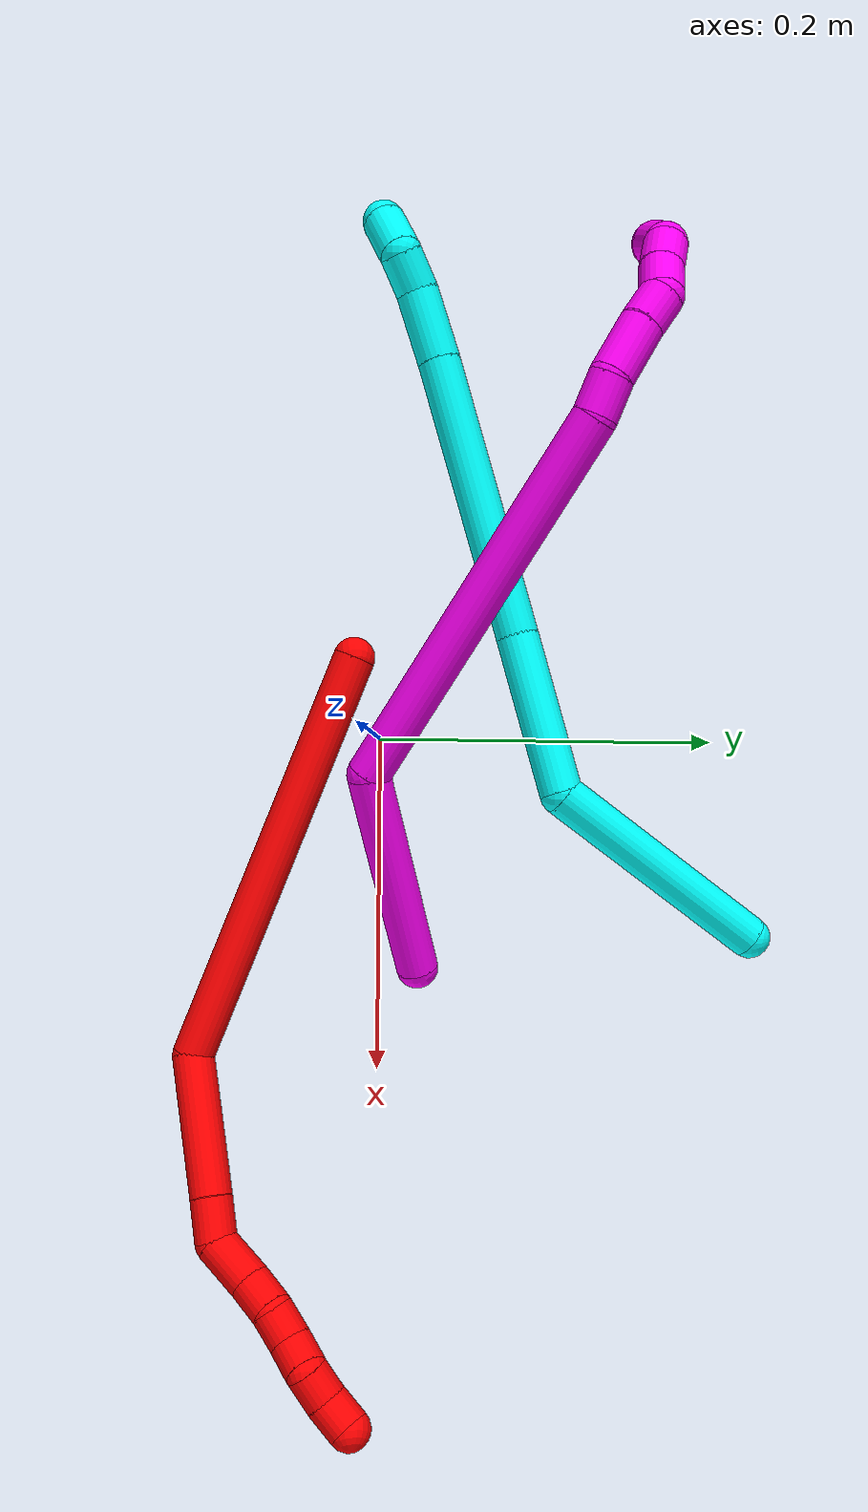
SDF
<sdf version="1.7">
 <world name="default">
  <model name="photoneo_s_sensor">
   <static>1</static>
   <pose>0 0 2 1.57079 1.57079 3.14159</pose>
   <link name="link">
    <inertial><mass>0.1</mass></inertial>
    <sensor name="sensor" type="depth">
     <update_rate>30</update_rate>
     <camera>
      <horizontal_fov>1.22</horizontal_fov>
      <image><width>1920</width><height>1200</height><format>B8G8R8</format></image>
      <clip><near>0.1</near><far>4</far></clip>
      <depth_camera><output>points</output></depth_camera>
     </camera>
     <plugin name="camera_plugin" filename="libgazebo_ros_depth_camera.so">
      <baseline>0.2</baseline>
      <alwaysOn>1</alwaysOn>
      <updateRate>0.0</updateRate>
      <cameraName>camera_ir</cameraName>
      <imageTopicName>/camera/color/image_raw</imageTopicName>
      <cameraInfoTopicName>/camera/color/camera_info</cameraInfoTopicName>
      <depthImageTopicName>/camera/depth/image_raw</depthImageTopicName>
      <depthImageCameraInfoTopicName>/camera/depth/camera_info</depthImageCameraInfoTopicName>
      <pointCloudTopicName>/camera/depth/points</pointCloudTopicName>
      <frameName>fr_optical</frameName>
      <pointCloudCutoff>0.1</pointCloudCutoff>
      <pointCloudCutoffMax>2.0</pointCloudCutoffMax>
      <distortionK1>0</distortionK1>
      <distortionK2>0</distortionK2>
      <distortionK3>0</distortionK3>
      <distortionT1>0</distortionT1>
      <distortionT2>0</distortionT2>
      <CxPrime>0</CxPrime>
      <Cx>0</Cx>
      <Cy>0</Cy>
      <focalLength>0</focalLength>
      <hackBaseline>0</hackBaseline>
     </plugin>
    </sensor>
   </link>
  </model>
  <model name="bin">
   <static>1</static>
   <link name="bottom">
    <collision name="collision-bottom">
     <pose>0 0 -0.01 0 -0 0</pose>
     <geometry><box><size>0.8 0.6 0.02</size></box></geometry>
     <surface>
      <friction><ode><mu>100</mu><mu2>100</mu2></ode></friction>
      <contact><collide_bitmask>65535</collide_bitmask></contact>
     </surface>
    </collision>
   </link>
   <link name="west_wall">
    <collision name="collision-west_wall">
     <pose>-0.41 0 0.1 0 -0 0</pose>
     <geometry><box><size>0.02 0.6 0.2</size></box></geometry>
     <surface>
      <friction><ode><mu>100</mu><mu2>100</mu2></ode></friction>
      <contact><collide_bitmask>65535</collide_bitmask></contact>
     </surface>
    </collision>
   </link>
   <link name="east_wall">
    <collision name="collision-east_wall">
     <pose>0.41 0 0.1 0 -0 0</pose>
     <geometry><box><size>0.02 0.6 0.2</size></box></geometry>
     <surface>
      <friction><ode><mu>100</mu><mu2>100</mu2></ode></friction>
      <contact><collide_bitmask>65535</collide_bitmask></contact>
     </surface>
    </collision>
   </link>
   <link name="south_wall">
    <collision name="collision-south_wall">
     <pose>0 -0.31 0.1 0 -0 0</pose>
     <geometry><box><size>0.8 0.02 0.2</size></box></geometry>
     <surface>
      <friction><ode><mu>100</mu><mu2>100</mu2></ode></friction>
      <contact><collide_bitmask>65535</collide_bitmask></contact>
     </surface>
    </collision>
   </link>
   <link name="north_wall">
    <collision name="collision-north_wall">
     <pose>0 0.31 0.1 0 -0 0</pose>
     <geometry><box><size>0.8 0.02 0.2</size></box></geometry>
     <surface>
      <friction><ode><mu>100</mu><mu2>100</mu2></ode></friction>
      <contact><collide_bitmask>65535</collide_bitmask></contact>
     </surface>
    </collision>
   </link>
  </model>
  <model name="2">
   <static>0</static>
   <link name="2">
    <collision name="collision-cylinder-e_1_1_4">
     <pose>0.087213 -0.027423 0.090259 0.294961 0.746202 0.116172</pose>
     <geometry><cylinder><radius>0.0125</radius><length>0.256943</length></cylinder></geometry>
     <surface>
      <friction><ode><mu>1.16</mu><mu2>1.16</mu2><slip1>0</slip1><slip2>0</slip2></ode></friction>
      <contact><ode><kp>1e+06</kp><kd>1</kd><max_vel>0</max_vel><min_depth>0.001</min_depth></ode></contact>
     </surface>
    </collision>
    <visual name="visual-cylinder-e_1_1_4">
     <pose>0.087213 -0.027423 0.090259 0.294961 0.746202 0.116172</pose>
     <geometry><cylinder><radius>0.0125</radius><length>0.256943</length></cylinder></geometry>
     <material><ambient>1 0 0 1</ambient></material>
    </visual>
    <collision name="collision-cylinder-e_2_4_5">
     <pose>0.185858 -0.047618 0.220543 -0.178647 0.273996 -0.024693</pose>
     <geometry><cylinder><radius>0.0125</radius><length>0.084495</length></cylinder></geometry>
     <surface>
      <friction><ode><mu>1.16</mu><mu2>1.16</mu2><slip1>0</slip1><slip2>0</slip2></ode></friction>
      <contact><ode><kp>1e+06</kp><kd>1</kd><max_vel>0</max_vel><min_depth>0.001</min_depth></ode></contact>
     </surface>
    </collision>
    <visual name="visual-cylinder-e_2_4_5">
     <pose>0.185858 -0.047618 0.220543 -0.178647 0.273996 -0.024693</pose>
     <geometry><cylinder><radius>0.0125</radius><length>0.084495</length></cylinder></geometry>
     <material><ambient>1 0 0 1</ambient></material>
    </visual>
    <collision name="collision-cylinder-e_3_5_6">
     <pose>0.20141 -0.038132 0.272795 -0.182681 0.31995 -0.029556</pose>
     <geometry><cylinder><radius>0.0125</radius><length>0.0262</length></cylinder></geometry>
     <surface>
      <friction><ode><mu>1.16</mu><mu2>1.16</mu2><slip1>0</slip1><slip2>0</slip2></ode></friction>
      <contact><ode><kp>1e+06</kp><kd>1</kd><max_vel>0</max_vel><min_depth>0.001</min_depth></ode></contact>
     </surface>
    </collision>
    <visual name="visual-cylinder-e_3_5_6">
     <pose>0.20141 -0.038132 0.272795 -0.182681 0.31995 -0.029556</pose>
     <geometry><cylinder><radius>0.0125</radius><length>0.0262</length></cylinder></geometry>
     <material><ambient>1 0 0 1</ambient></material>
    </visual>
    <collision name="collision-cylinder-e_4_6_7">
     <pose>0.20346 -0.026987 0.297324 -0.625587 -0.13559 0.043912</pose>
     <geometry><cylinder><radius>0.0125</radius><length>0.03063</length></cylinder></geometry>
     <surface>
      <friction><ode><mu>1.16</mu><mu2>1.16</mu2><slip1>0</slip1><slip2>0</slip2></ode></friction>
      <contact><ode><kp>1e+06</kp><kd>1</kd><max_vel>0</max_vel><min_depth>0.001</min_depth></ode></contact>
     </surface>
    </collision>
    <visual name="visual-cylinder-e_4_6_7">
     <pose>0.20346 -0.026987 0.297324 -0.625587 -0.13559 0.043912</pose>
     <geometry><cylinder><radius>0.0125</radius><length>0.03063</length></cylinder></geometry>
     <material><ambient>1 0 0 1</ambient></material>
    </visual>
    <collision name="collision-cylinder-e_5_7_8">
     <pose>0.19883 -0.013101 0.318593 -0.508675 -0.244258 0.063795</pose>
     <geometry><cylinder><radius>0.0125</radius><length>0.021166</length></cylinder></geometry>
     <surface>
      <friction><ode><mu>1.16</mu><mu2>1.16</mu2><slip1>0</slip1><slip2>0</slip2></ode></friction>
      <contact><ode><kp>1e+06</kp><kd>1</kd><max_vel>0</max_vel><min_depth>0.001</min_depth></ode></contact>
     </surface>
    </collision>
    <visual name="visual-cylinder-e_5_7_8">
     <pose>0.19883 -0.013101 0.318593 -0.508675 -0.244258 0.063795</pose>
     <geometry><cylinder><radius>0.0125</radius><length>0.021166</length></cylinder></geometry>
     <material><ambient>1 0 0 1</ambient></material>
    </visual>
    <collision name="collision-cylinder-e_6_8_9">
     <pose>0.197306 -0.002762 0.336208 -0.553093 0.101506 -0.028832</pose>
     <geometry><cylinder><radius>0.0125</radius><length>0.020427</length></cylinder></geometry>
     <surface>
      <friction><ode><mu>1.16</mu><mu2>1.16</mu2><slip1>0</slip1><slip2>0</slip2></ode></friction>
      <contact><ode><kp>1e+06</kp><kd>1</kd><max_vel>0</max_vel><min_depth>0.001</min_depth></ode></contact>
     </surface>
    </collision>
    <visual name="visual-cylinder-e_6_8_9">
     <pose>0.197306 -0.002762 0.336208 -0.553093 0.101506 -0.028832</pose>
     <geometry><cylinder><radius>0.0125</radius><length>0.020427</length></cylinder></geometry>
     <material><ambient>1 0 0 1</ambient></material>
    </visual>
    <collision name="collision-cylinder-e_7_9_10">
     <pose>0.195664 0.005654 0.35399 -0.324962 -0.27085 0.044665</pose>
     <geometry><cylinder><radius>0.0125</radius><length>0.02001</length></cylinder></geometry>
     <surface>
      <friction><ode><mu>1.16</mu><mu2>1.16</mu2><slip1>0</slip1><slip2>0</slip2></ode></friction>
      <contact><ode><kp>1e+06</kp><kd>1</kd><max_vel>0</max_vel><min_depth>0.001</min_depth></ode></contact>
     </surface>
    </collision>
    <visual name="visual-cylinder-e_7_9_10">
     <pose>0.195664 0.005654 0.35399 -0.324962 -0.27085 0.044665</pose>
     <geometry><cylinder><radius>0.0125</radius><length>0.02001</length></cylinder></geometry>
     <material><ambient>1 0 0 1</ambient></material>
    </visual>
    <collision name="collision-cylinder-e_8_10_11">
     <pose>0.195365 0.014873 0.370696 -0.681514 0.239253 -0.085192</pose>
     <geometry><cylinder><radius>0.0125</radius><length>0.020069</length></cylinder></geometry>
     <surface>
      <friction><ode><mu>1.16</mu><mu2>1.16</mu2><slip1>0</slip1><slip2>0</slip2></ode></friction>
      <contact><ode><kp>1e+06</kp><kd>1</kd><max_vel>0</max_vel><min_depth>0.001</min_depth></ode></contact>
     </surface>
    </collision>
    <visual name="visual-cylinder-e_8_10_11">
     <pose>0.195365 0.014873 0.370696 -0.681514 0.239253 -0.085192</pose>
     <geometry><cylinder><radius>0.0125</radius><length>0.020069</length></cylinder></geometry>
     <material><ambient>1 0 0 1</ambient></material>
    </visual>
    <collision name="collision-cylinder-e_9_11_2">
     <pose>0.196678 0.0267 0.386462 -0.606543 -0.106381 0.033318</pose>
     <geometry><cylinder><radius>0.0125</radius><length>0.02006</length></cylinder></geometry>
     <surface>
      <friction><ode><mu>1.16</mu><mu2>1.16</mu2><slip1>0</slip1><slip2>0</slip2></ode></friction>
      <contact><ode><kp>1e+06</kp><kd>1</kd><max_vel>0</max_vel><min_depth>0.001</min_depth></ode></contact>
     </surface>
    </collision>
    <visual name="visual-cylinder-e_9_11_2">
     <pose>0.196678 0.0267 0.386462 -0.606543 -0.106381 0.033318</pose>
     <geometry><cylinder><radius>0.0125</radius><length>0.02006</length></cylinder></geometry>
     <material><ambient>1 0 0 1</ambient></material>
    </visual>
    <collision name="collision-sphere-2">
     <pose>0.195613 0.032385 0.394656 0 -0 0</pose>
     <geometry><sphere><radius>0.0125</radius></sphere></geometry>
     <surface>
      <friction><ode><mu>1.16</mu><mu2>1.16</mu2><slip1>0</slip1><slip2>0</slip2></ode></friction>
      <contact><ode><kp>1e+06</kp><kd>1</kd><max_vel>0</max_vel><min_depth>0.001</min_depth></ode></contact>
     </surface>
    </collision>
    <visual name="visual-sphere-2">
     <pose>0.195613 0.032385 0.394656 0 -0 0</pose>
     <geometry><sphere><radius>0.0125</radius></sphere></geometry>
     <material><ambient>1 0 0 1</ambient></material>
    </visual>
    <collision name="collision-sphere-11">
     <pose>0.197743 0.021015 0.378267 0 -0 0</pose>
     <geometry><sphere><radius>0.0125</radius></sphere></geometry>
     <surface>
      <friction><ode><mu>1.16</mu><mu2>1.16</mu2><slip1>0</slip1><slip2>0</slip2></ode></friction>
      <contact><ode><kp>1e+06</kp><kd>1</kd><max_vel>0</max_vel><min_depth>0.001</min_depth></ode></contact>
     </surface>
    </collision>
    <visual name="visual-sphere-11">
     <pose>0.197743 0.021015 0.378267 0 -0 0</pose>
     <geometry><sphere><radius>0.0125</radius></sphere></geometry>
     <material><ambient>1 0 0 1</ambient></material>
    </visual>
    <collision name="collision-sphere-10">
     <pose>0.192987 0.008732 0.363125 0 -0 0</pose>
     <geometry><sphere><radius>0.0125</radius></sphere></geometry>
     <surface>
      <friction><ode><mu>1.16</mu><mu2>1.16</mu2><slip1>0</slip1><slip2>0</slip2></ode></friction>
      <contact><ode><kp>1e+06</kp><kd>1</kd><max_vel>0</max_vel><min_depth>0.001</min_depth></ode></contact>
     </surface>
    </collision>
    <visual name="visual-sphere-10">
     <pose>0.192987 0.008732 0.363125 0 -0 0</pose>
     <geometry><sphere><radius>0.0125</radius></sphere></geometry>
     <material><ambient>1 0 0 1</ambient></material>
    </visual>
    <collision name="collision-sphere-9">
     <pose>0.198341 0.002576 0.344854 0 -0 0</pose>
     <geometry><sphere><radius>0.0125</radius></sphere></geometry>
     <surface>
      <friction><ode><mu>1.16</mu><mu2>1.16</mu2><slip1>0</slip1><slip2>0</slip2></ode></friction>
      <contact><ode><kp>1e+06</kp><kd>1</kd><max_vel>0</max_vel><min_depth>0.001</min_depth></ode></contact>
     </surface>
    </collision>
    <visual name="visual-sphere-9">
     <pose>0.198341 0.002576 0.344854 0 -0 0</pose>
     <geometry><sphere><radius>0.0125</radius></sphere></geometry>
     <material><ambient>1 0 0 1</ambient></material>
    </visual>
    <collision name="collision-sphere-4">
     <pose>0.174427 -0.054846 0.180518 0 -0 0</pose>
     <geometry><sphere><radius>0.0125</radius></sphere></geometry>
     <surface>
      <friction><ode><mu>1.16</mu><mu2>1.16</mu2><slip1>0</slip1><slip2>0</slip2></ode></friction>
      <contact><ode><kp>1e+06</kp><kd>1</kd><max_vel>0</max_vel><min_depth>0.001</min_depth></ode></contact>
     </surface>
    </collision>
    <visual name="visual-sphere-4">
     <pose>0.174427 -0.054846 0.180518 0 -0 0</pose>
     <geometry><sphere><radius>0.0125</radius></sphere></geometry>
     <material><ambient>1 0 0 1</ambient></material>
    </visual>
    <collision name="collision-sphere-1">
     <geometry><sphere><radius>0.0125</radius></sphere></geometry>
     <surface>
      <friction><ode><mu>1.16</mu><mu2>1.16</mu2><slip1>0</slip1><slip2>0</slip2></ode></friction>
      <contact><ode><kp>1e+06</kp><kd>1</kd><max_vel>0</max_vel><min_depth>0.001</min_depth></ode></contact>
     </surface>
    </collision>
    <visual name="visual-sphere-1">
     <geometry><sphere><radius>0.0125</radius></sphere></geometry>
     <material><ambient>1 0 0 1</ambient></material>
    </visual>
    <collision name="collision-sphere-8">
     <pose>0.196271 -0.0081 0.327562 0 -0 0</pose>
     <geometry><sphere><radius>0.0125</radius></sphere></geometry>
     <surface>
      <friction><ode><mu>1.16</mu><mu2>1.16</mu2><slip1>0</slip1><slip2>0</slip2></ode></friction>
      <contact><ode><kp>1e+06</kp><kd>1</kd><max_vel>0</max_vel><min_depth>0.001</min_depth></ode></contact>
     </surface>
    </collision>
    <visual name="visual-sphere-8">
     <pose>0.196271 -0.0081 0.327562 0 -0 0</pose>
     <geometry><sphere><radius>0.0125</radius></sphere></geometry>
     <material><ambient>1 0 0 1</ambient></material>
    </visual>
    <collision name="collision-sphere-5">
     <pose>0.197289 -0.040391 0.260567 0 -0 0</pose>
     <geometry><sphere><radius>0.0125</radius></sphere></geometry>
     <surface>
      <friction><ode><mu>1.16</mu><mu2>1.16</mu2><slip1>0</slip1><slip2>0</slip2></ode></friction>
      <contact><ode><kp>1e+06</kp><kd>1</kd><max_vel>0</max_vel><min_depth>0.001</min_depth></ode></contact>
     </surface>
    </collision>
    <visual name="visual-sphere-5">
     <pose>0.197289 -0.040391 0.260567 0 -0 0</pose>
     <geometry><sphere><radius>0.0125</radius></sphere></geometry>
     <material><ambient>1 0 0 1</ambient></material>
    </visual>
    <collision name="collision-sphere-6">
     <pose>0.20553 -0.035873 0.285023 0 -0 0</pose>
     <geometry><sphere><radius>0.0125</radius></sphere></geometry>
     <surface>
      <friction><ode><mu>1.16</mu><mu2>1.16</mu2><slip1>0</slip1><slip2>0</slip2></ode></friction>
      <contact><ode><kp>1e+06</kp><kd>1</kd><max_vel>0</max_vel><min_depth>0.001</min_depth></ode></contact>
     </surface>
    </collision>
    <visual name="visual-sphere-6">
     <pose>0.20553 -0.035873 0.285023 0 -0 0</pose>
     <geometry><sphere><radius>0.0125</radius></sphere></geometry>
     <material><ambient>1 0 0 1</ambient></material>
    </visual>
    <collision name="collision-sphere-7">
     <pose>0.201389 -0.018102 0.309625 0 -0 0</pose>
     <geometry><sphere><radius>0.0125</radius></sphere></geometry>
     <surface>
      <friction><ode><mu>1.16</mu><mu2>1.16</mu2><slip1>0</slip1><slip2>0</slip2></ode></friction>
      <contact><ode><kp>1e+06</kp><kd>1</kd><max_vel>0</max_vel><min_depth>0.001</min_depth></ode></contact>
     </surface>
    </collision>
    <visual name="visual-sphere-7">
     <pose>0.201389 -0.018102 0.309625 0 -0 0</pose>
     <geometry><sphere><radius>0.0125</radius></sphere></geometry>
     <material><ambient>1 0 0 1</ambient></material>
    </visual>
    <inertial>
     <pose>0.139284 -0.024564 0.187934 0 -0 0</pose>
     <mass>0.5</mass>
     <inertia>
      <ixx>0.001238</ixx>
      <ixy>0</ixy>
      <ixz>0</ixz>
      <iyy>0.001573</iyy>
      <iyz>0</iyz>
      <izz>-0.000661</izz>
     </inertia>
    </inertial>
   </link>
   <pose>-0.048083 -0.015275 0.011707 -0.629283 0.796995 -0.618082</pose>
  </model>
  <model name="3">
   <static>0</static>
   <link name="3">
    <collision name="collision-cylinder-e_1_1_4">
     <pose>-0.036401 -0.036555 -0.051548 2.52475 -0.522607 -1.3966</pose>
     <geometry><cylinder><radius>0.0125</radius><length>0.145856</length></cylinder></geometry>
     <surface>
      <friction><ode><mu>1.16</mu><mu2>1.16</mu2><slip1>0</slip1><slip2>0</slip2></ode></friction>
      <contact><ode><kp>1e+06</kp><kd>1</kd><max_vel>0</max_vel><min_depth>0.001</min_depth></ode></contact>
     </surface>
    </collision>
    <visual name="visual-cylinder-e_1_1_4">
     <pose>-0.036401 -0.036555 -0.051548 2.52475 -0.522607 -1.3966</pose>
     <geometry><cylinder><radius>0.0125</radius><length>0.145856</length></cylinder></geometry>
     <material><ambient>0.003922 1 0.996078 1</ambient></material>
    </visual>
    <collision name="collision-cylinder-e_2_4_5">
     <pose>-0.117354 -0.074444 -0.120733 3.0661 -1.19284 -3.03046</pose>
     <geometry><cylinder><radius>0.0125</radius><length>0.095869</length></cylinder></geometry>
     <surface>
      <friction><ode><mu>1.16</mu><mu2>1.16</mu2><slip1>0</slip1><slip2>0</slip2></ode></friction>
      <contact><ode><kp>1e+06</kp><kd>1</kd><max_vel>0</max_vel><min_depth>0.001</min_depth></ode></contact>
     </surface>
    </collision>
    <visual name="visual-cylinder-e_2_4_5">
     <pose>-0.117354 -0.074444 -0.120733 3.0661 -1.19284 -3.03046</pose>
     <geometry><cylinder><radius>0.0125</radius><length>0.095869</length></cylinder></geometry>
     <material><ambient>0.003922 1 0.996078 1</ambient></material>
    </visual>
    <collision name="collision-cylinder-e_3_5_6">
     <pose>-0.239205 -0.087384 -0.166798 2.75396 -1.1927 -2.57863</pose>
     <geometry><cylinder><radius>0.0125</radius><length>0.16635</length></cylinder></geometry>
     <surface>
      <friction><ode><mu>1.16</mu><mu2>1.16</mu2><slip1>0</slip1><slip2>0</slip2></ode></friction>
      <contact><ode><kp>1e+06</kp><kd>1</kd><max_vel>0</max_vel><min_depth>0.001</min_depth></ode></contact>
     </surface>
    </collision>
    <visual name="visual-cylinder-e_3_5_6">
     <pose>-0.239205 -0.087384 -0.166798 2.75396 -1.1927 -2.57863</pose>
     <geometry><cylinder><radius>0.0125</radius><length>0.16635</length></cylinder></geometry>
     <material><ambient>0.003922 1 0.996078 1</ambient></material>
    </visual>
    <collision name="collision-cylinder-e_4_6_7">
     <pose>-0.335735 -0.102725 -0.202728 2.67978 -1.15968 -2.45231</pose>
     <geometry><cylinder><radius>0.0125</radius><length>0.041954</length></cylinder></geometry>
     <surface>
      <friction><ode><mu>1.16</mu><mu2>1.16</mu2><slip1>0</slip1><slip2>0</slip2></ode></friction>
      <contact><ode><kp>1e+06</kp><kd>1</kd><max_vel>0</max_vel><min_depth>0.001</min_depth></ode></contact>
     </surface>
    </collision>
    <visual name="visual-cylinder-e_4_6_7">
     <pose>-0.335735 -0.102725 -0.202728 2.67978 -1.15968 -2.45231</pose>
     <geometry><cylinder><radius>0.0125</radius><length>0.041954</length></cylinder></geometry>
     <material><ambient>0.003922 1 0.996078 1</ambient></material>
    </visual>
    <collision name="collision-cylinder-e_5_7_8">
     <pose>-0.364437 -0.111561 -0.214371 2.25235 -0.964569 -1.66489</pose>
     <geometry><cylinder><radius>0.0125</radius><length>0.023055</length></cylinder></geometry>
     <surface>
      <friction><ode><mu>1.16</mu><mu2>1.16</mu2><slip1>0</slip1><slip2>0</slip2></ode></friction>
      <contact><ode><kp>1e+06</kp><kd>1</kd><max_vel>0</max_vel><min_depth>0.001</min_depth></ode></contact>
     </surface>
    </collision>
    <visual name="visual-cylinder-e_5_7_8">
     <pose>-0.364437 -0.111561 -0.214371 2.25235 -0.964569 -1.66489</pose>
     <geometry><cylinder><radius>0.0125</radius><length>0.023055</length></cylinder></geometry>
     <material><ambient>0.003922 1 0.996078 1</ambient></material>
    </visual>
    <collision name="collision-cylinder-e_6_8_2">
     <pose>-0.384521 -0.113597 -0.226201 -2.76236 -0.908147 2.39231</pose>
     <geometry><cylinder><radius>0.0125</radius><length>0.026917</length></cylinder></geometry>
     <surface>
      <friction><ode><mu>1.16</mu><mu2>1.16</mu2><slip1>0</slip1><slip2>0</slip2></ode></friction>
      <contact><ode><kp>1e+06</kp><kd>1</kd><max_vel>0</max_vel><min_depth>0.001</min_depth></ode></contact>
     </surface>
    </collision>
    <visual name="visual-cylinder-e_6_8_2">
     <pose>-0.384521 -0.113597 -0.226201 -2.76236 -0.908147 2.39231</pose>
     <geometry><cylinder><radius>0.0125</radius><length>0.026917</length></cylinder></geometry>
     <material><ambient>0.003922 1 0.996078 1</ambient></material>
    </visual>
    <collision name="collision-sphere-2">
     <pose>-0.395131 -0.110531 -0.233892 0 -0 0</pose>
     <geometry><sphere><radius>0.0125</radius></sphere></geometry>
     <surface>
      <friction><ode><mu>1.16</mu><mu2>1.16</mu2><slip1>0</slip1><slip2>0</slip2></ode></friction>
      <contact><ode><kp>1e+06</kp><kd>1</kd><max_vel>0</max_vel><min_depth>0.001</min_depth></ode></contact>
     </surface>
    </collision>
    <visual name="visual-sphere-2">
     <pose>-0.395131 -0.110531 -0.233892 0 -0 0</pose>
     <geometry><sphere><radius>0.0125</radius></sphere></geometry>
     <material><ambient>0.003922 1 0.996078 1</ambient></material>
    </visual>
    <collision name="collision-sphere-4">
     <pose>-0.072802 -0.07311 -0.103095 0 -0 0</pose>
     <geometry><sphere><radius>0.0125</radius></sphere></geometry>
     <surface>
      <friction><ode><mu>1.16</mu><mu2>1.16</mu2><slip1>0</slip1><slip2>0</slip2></ode></friction>
      <contact><ode><kp>1e+06</kp><kd>1</kd><max_vel>0</max_vel><min_depth>0.001</min_depth></ode></contact>
     </surface>
    </collision>
    <visual name="visual-sphere-4">
     <pose>-0.072802 -0.07311 -0.103095 0 -0 0</pose>
     <geometry><sphere><radius>0.0125</radius></sphere></geometry>
     <material><ambient>0.003922 1 0.996078 1</ambient></material>
    </visual>
    <collision name="collision-sphere-1">
     <geometry><sphere><radius>0.0125</radius></sphere></geometry>
     <surface>
      <friction><ode><mu>1.16</mu><mu2>1.16</mu2><slip1>0</slip1><slip2>0</slip2></ode></friction>
      <contact><ode><kp>1e+06</kp><kd>1</kd><max_vel>0</max_vel><min_depth>0.001</min_depth></ode></contact>
     </surface>
    </collision>
    <visual name="visual-sphere-1">
     <geometry><sphere><radius>0.0125</radius></sphere></geometry>
     <material><ambient>0.003922 1 0.996078 1</ambient></material>
    </visual>
    <collision name="collision-sphere-8">
     <pose>-0.373911 -0.116662 -0.218509 0 -0 0</pose>
     <geometry><sphere><radius>0.0125</radius></sphere></geometry>
     <surface>
      <friction><ode><mu>1.16</mu><mu2>1.16</mu2><slip1>0</slip1><slip2>0</slip2></ode></friction>
      <contact><ode><kp>1e+06</kp><kd>1</kd><max_vel>0</max_vel><min_depth>0.001</min_depth></ode></contact>
     </surface>
    </collision>
    <visual name="visual-sphere-8">
     <pose>-0.373911 -0.116662 -0.218509 0 -0 0</pose>
     <geometry><sphere><radius>0.0125</radius></sphere></geometry>
     <material><ambient>0.003922 1 0.996078 1</ambient></material>
    </visual>
    <collision name="collision-sphere-5">
     <pose>-0.161905 -0.075778 -0.138372 0 -0 0</pose>
     <geometry><sphere><radius>0.0125</radius></sphere></geometry>
     <surface>
      <friction><ode><mu>1.16</mu><mu2>1.16</mu2><slip1>0</slip1><slip2>0</slip2></ode></friction>
      <contact><ode><kp>1e+06</kp><kd>1</kd><max_vel>0</max_vel><min_depth>0.001</min_depth></ode></contact>
     </surface>
    </collision>
    <visual name="visual-sphere-5">
     <pose>-0.161905 -0.075778 -0.138372 0 -0 0</pose>
     <geometry><sphere><radius>0.0125</radius></sphere></geometry>
     <material><ambient>0.003922 1 0.996078 1</ambient></material>
    </visual>
    <collision name="collision-sphere-6">
     <pose>-0.316506 -0.09899 -0.195223 0 -0 0</pose>
     <geometry><sphere><radius>0.0125</radius></sphere></geometry>
     <surface>
      <friction><ode><mu>1.16</mu><mu2>1.16</mu2><slip1>0</slip1><slip2>0</slip2></ode></friction>
      <contact><ode><kp>1e+06</kp><kd>1</kd><max_vel>0</max_vel><min_depth>0.001</min_depth></ode></contact>
     </surface>
    </collision>
    <visual name="visual-sphere-6">
     <pose>-0.316506 -0.09899 -0.195223 0 -0 0</pose>
     <geometry><sphere><radius>0.0125</radius></sphere></geometry>
     <material><ambient>0.003922 1 0.996078 1</ambient></material>
    </visual>
    <collision name="collision-sphere-7">
     <pose>-0.354964 -0.10646 -0.210233 0 -0 0</pose>
     <geometry><sphere><radius>0.0125</radius></sphere></geometry>
     <surface>
      <friction><ode><mu>1.16</mu><mu2>1.16</mu2><slip1>0</slip1><slip2>0</slip2></ode></friction>
      <contact><ode><kp>1e+06</kp><kd>1</kd><max_vel>0</max_vel><min_depth>0.001</min_depth></ode></contact>
     </surface>
    </collision>
    <visual name="visual-sphere-7">
     <pose>-0.354964 -0.10646 -0.210233 0 -0 0</pose>
     <geometry><sphere><radius>0.0125</radius></sphere></geometry>
     <material><ambient>0.003922 1 0.996078 1</ambient></material>
    </visual>
    <inertial>
     <pose>-0.178378 -0.073889 -0.132752 0 -0 0</pose>
     <mass>0.5</mass>
     <inertia>
      <ixx>-0.000452</ixx>
      <ixy>0</ixy>
      <ixz>0</ixz>
      <iyy>0.000188</iyy>
      <iyz>0</iyz>
      <izz>0.000749</izz>
     </inertia>
    </inertial>
   </link>
   <pose>0.116493 0.222463 0.016316 -1.22686 -0.011565 -0.089395</pose>
  </model>
  <model name="10">
   <static>0</static>
   <link name="10">
    <collision name="collision-cylinder-e_1_1_4">
     <pose>-0.053276 -0.035456 0.008596 1.33295 -0.970349 -0.786168</pose>
     <geometry><cylinder><radius>0.0125</radius><length>0.129142</length></cylinder></geometry>
     <surface>
      <friction><ode><mu>1.16</mu><mu2>1.16</mu2><slip1>0</slip1><slip2>0</slip2></ode></friction>
      <contact><ode><kp>1e+06</kp><kd>1</kd><max_vel>0</max_vel><min_depth>0.001</min_depth></ode></contact>
     </surface>
    </collision>
    <visual name="visual-cylinder-e_1_1_4">
     <pose>-0.053276 -0.035456 0.008596 1.33295 -0.970349 -0.786168</pose>
     <geometry><cylinder><radius>0.0125</radius><length>0.129142</length></cylinder></geometry>
     <material><ambient>1 0 0.964706 1</ambient></material>
    </visual>
    <collision name="collision-cylinder-e_2_4_5">
     <pose>-0.170433 -0.105036 0.108064 0.359219 -0.582047 -0.108661</pose>
     <geometry><cylinder><radius>0.0125</radius><length>0.232404</length></cylinder></geometry>
     <surface>
      <friction><ode><mu>1.16</mu><mu2>1.16</mu2><slip1>0</slip1><slip2>0</slip2></ode></friction>
      <contact><ode><kp>1e+06</kp><kd>1</kd><max_vel>0</max_vel><min_depth>0.001</min_depth></ode></contact>
     </surface>
    </collision>
    <visual name="visual-cylinder-e_2_4_5">
     <pose>-0.170433 -0.105036 0.108064 0.359219 -0.582047 -0.108661</pose>
     <geometry><cylinder><radius>0.0125</radius><length>0.232404</length></cylinder></geometry>
     <material><ambient>1 0 0.964706 1</ambient></material>
    </visual>
    <collision name="collision-cylinder-e_3_5_6">
     <pose>-0.242603 -0.140839 0.206461 0.219575 -0.821659 -0.095963</pose>
     <geometry><cylinder><radius>0.0125</radius><length>0.022641</length></cylinder></geometry>
     <surface>
      <friction><ode><mu>1.16</mu><mu2>1.16</mu2><slip1>0</slip1><slip2>0</slip2></ode></friction>
      <contact><ode><kp>1e+06</kp><kd>1</kd><max_vel>0</max_vel><min_depth>0.001</min_depth></ode></contact>
     </surface>
    </collision>
    <visual name="visual-cylinder-e_3_5_6">
     <pose>-0.242603 -0.140839 0.206461 0.219575 -0.821659 -0.095963</pose>
     <geometry><cylinder><radius>0.0125</radius><length>0.022641</length></cylinder></geometry>
     <material><ambient>1 0 0.964706 1</ambient></material>
    </visual>
    <collision name="collision-cylinder-e_4_6_7">
     <pose>-0.262318 -0.140547 0.22609 -0.161445 -0.74995 0.063661</pose>
     <geometry><cylinder><radius>0.0125</radius><length>0.033522</length></cylinder></geometry>
     <surface>
      <friction><ode><mu>1.16</mu><mu2>1.16</mu2><slip1>0</slip1><slip2>0</slip2></ode></friction>
      <contact><ode><kp>1e+06</kp><kd>1</kd><max_vel>0</max_vel><min_depth>0.001</min_depth></ode></contact>
     </surface>
    </collision>
    <visual name="visual-cylinder-e_4_6_7">
     <pose>-0.262318 -0.140547 0.22609 -0.161445 -0.74995 0.063661</pose>
     <geometry><cylinder><radius>0.0125</radius><length>0.033522</length></cylinder></geometry>
     <material><ambient>1 0 0.964706 1</ambient></material>
    </visual>
    <collision name="collision-cylinder-e_5_7_8">
     <pose>-0.280262 -0.136765 0.245992 -0.228113 -0.683579 0.08146</pose>
     <geometry><cylinder><radius>0.0125</radius><length>0.020648</length></cylinder></geometry>
     <surface>
      <friction><ode><mu>1.16</mu><mu2>1.16</mu2><slip1>0</slip1><slip2>0</slip2></ode></friction>
      <contact><ode><kp>1e+06</kp><kd>1</kd><max_vel>0</max_vel><min_depth>0.001</min_depth></ode></contact>
     </surface>
    </collision>
    <visual name="visual-cylinder-e_5_7_8">
     <pose>-0.280262 -0.136765 0.245992 -0.228113 -0.683579 0.08146</pose>
     <geometry><cylinder><radius>0.0125</radius><length>0.020648</length></cylinder></geometry>
     <material><ambient>1 0 0.964706 1</ambient></material>
    </visual>
    <collision name="collision-cylinder-e_6_8_9">
     <pose>-0.295939 -0.130417 0.256764 -0.99058 -1.0358 0.597183</pose>
     <geometry><cylinder><radius>0.0125</radius><length>0.021287</length></cylinder></geometry>
     <surface>
      <friction><ode><mu>1.16</mu><mu2>1.16</mu2><slip1>0</slip1><slip2>0</slip2></ode></friction>
      <contact><ode><kp>1e+06</kp><kd>1</kd><max_vel>0</max_vel><min_depth>0.001</min_depth></ode></contact>
     </surface>
    </collision>
    <visual name="visual-cylinder-e_6_8_9">
     <pose>-0.295939 -0.130417 0.256764 -0.99058 -1.0358 0.597183</pose>
     <geometry><cylinder><radius>0.0125</radius><length>0.021287</length></cylinder></geometry>
     <material><ambient>1 0 0.964706 1</ambient></material>
    </visual>
    <collision name="collision-cylinder-e_7_9_10">
     <pose>-0.313302 -0.121583 0.263608 -0.837507 -0.957061 0.453812</pose>
     <geometry><cylinder><radius>0.0125</radius><length>0.020078</length></cylinder></geometry>
     <surface>
      <friction><ode><mu>1.16</mu><mu2>1.16</mu2><slip1>0</slip1><slip2>0</slip2></ode></friction>
      <contact><ode><kp>1e+06</kp><kd>1</kd><max_vel>0</max_vel><min_depth>0.001</min_depth></ode></contact>
     </surface>
    </collision>
    <visual name="visual-cylinder-e_7_9_10">
     <pose>-0.313302 -0.121583 0.263608 -0.837507 -0.957061 0.453812</pose>
     <geometry><cylinder><radius>0.0125</radius><length>0.020078</length></cylinder></geometry>
     <material><ambient>1 0 0.964706 1</ambient></material>
    </visual>
    <collision name="collision-cylinder-e_8_10_2">
     <pose>-0.326976 -0.108908 0.265834 -1.76456 -0.569524 0.683554</pose>
     <geometry><cylinder><radius>0.0125</radius><length>0.020277</length></cylinder></geometry>
     <surface>
      <friction><ode><mu>1.16</mu><mu2>1.16</mu2><slip1>0</slip1><slip2>0</slip2></ode></friction>
      <contact><ode><kp>1e+06</kp><kd>1</kd><max_vel>0</max_vel><min_depth>0.001</min_depth></ode></contact>
     </surface>
    </collision>
    <visual name="visual-cylinder-e_8_10_2">
     <pose>-0.326976 -0.108908 0.265834 -1.76456 -0.569524 0.683554</pose>
     <geometry><cylinder><radius>0.0125</radius><length>0.020277</length></cylinder></geometry>
     <material><ambient>1 0 0.964706 1</ambient></material>
    </visual>
    <collision name="collision-sphere-2">
     <pose>-0.332443 -0.10053 0.26419 0 -0 0</pose>
     <geometry><sphere><radius>0.0125</radius></sphere></geometry>
     <surface>
      <friction><ode><mu>1.16</mu><mu2>1.16</mu2><slip1>0</slip1><slip2>0</slip2></ode></friction>
      <contact><ode><kp>1e+06</kp><kd>1</kd><max_vel>0</max_vel><min_depth>0.001</min_depth></ode></contact>
     </surface>
    </collision>
    <visual name="visual-sphere-2">
     <pose>-0.332443 -0.10053 0.26419 0 -0 0</pose>
     <geometry><sphere><radius>0.0125</radius></sphere></geometry>
     <material><ambient>1 0 0.964706 1</ambient></material>
    </visual>
    <collision name="collision-sphere-10">
     <pose>-0.321509 -0.117287 0.267478 0 -0 0</pose>
     <geometry><sphere><radius>0.0125</radius></sphere></geometry>
     <surface>
      <friction><ode><mu>1.16</mu><mu2>1.16</mu2><slip1>0</slip1><slip2>0</slip2></ode></friction>
      <contact><ode><kp>1e+06</kp><kd>1</kd><max_vel>0</max_vel><min_depth>0.001</min_depth></ode></contact>
     </surface>
    </collision>
    <visual name="visual-sphere-10">
     <pose>-0.321509 -0.117287 0.267478 0 -0 0</pose>
     <geometry><sphere><radius>0.0125</radius></sphere></geometry>
     <material><ambient>1 0 0.964706 1</ambient></material>
    </visual>
    <collision name="collision-sphere-9">
     <pose>-0.305095 -0.125878 0.259739 0 -0 0</pose>
     <geometry><sphere><radius>0.0125</radius></sphere></geometry>
     <surface>
      <friction><ode><mu>1.16</mu><mu2>1.16</mu2><slip1>0</slip1><slip2>0</slip2></ode></friction>
      <contact><ode><kp>1e+06</kp><kd>1</kd><max_vel>0</max_vel><min_depth>0.001</min_depth></ode></contact>
     </surface>
    </collision>
    <visual name="visual-sphere-9">
     <pose>-0.305095 -0.125878 0.259739 0 -0 0</pose>
     <geometry><sphere><radius>0.0125</radius></sphere></geometry>
     <material><ambient>1 0 0.964706 1</ambient></material>
    </visual>
    <collision name="collision-sphere-4">
     <pose>-0.106553 -0.070913 0.017192 0 -0 0</pose>
     <geometry><sphere><radius>0.0125</radius></sphere></geometry>
     <surface>
      <friction><ode><mu>1.16</mu><mu2>1.16</mu2><slip1>0</slip1><slip2>0</slip2></ode></friction>
      <contact><ode><kp>1e+06</kp><kd>1</kd><max_vel>0</max_vel><min_depth>0.001</min_depth></ode></contact>
     </surface>
    </collision>
    <visual name="visual-sphere-4">
     <pose>-0.106553 -0.070913 0.017192 0 -0 0</pose>
     <geometry><sphere><radius>0.0125</radius></sphere></geometry>
     <material><ambient>1 0 0.964706 1</ambient></material>
    </visual>
    <collision name="collision-sphere-1">
     <geometry><sphere><radius>0.0125</radius></sphere></geometry>
     <surface>
      <friction><ode><mu>1.16</mu><mu2>1.16</mu2><slip1>0</slip1><slip2>0</slip2></ode></friction>
      <contact><ode><kp>1e+06</kp><kd>1</kd><max_vel>0</max_vel><min_depth>0.001</min_depth></ode></contact>
     </surface>
    </collision>
    <visual name="visual-sphere-1">
     <geometry><sphere><radius>0.0125</radius></sphere></geometry>
     <material><ambient>1 0 0.964706 1</ambient></material>
    </visual>
    <collision name="collision-sphere-8">
     <pose>-0.286783 -0.134955 0.253789 0 -0 0</pose>
     <geometry><sphere><radius>0.0125</radius></sphere></geometry>
     <surface>
      <friction><ode><mu>1.16</mu><mu2>1.16</mu2><slip1>0</slip1><slip2>0</slip2></ode></friction>
      <contact><ode><kp>1e+06</kp><kd>1</kd><max_vel>0</max_vel><min_depth>0.001</min_depth></ode></contact>
     </surface>
    </collision>
    <visual name="visual-sphere-8">
     <pose>-0.286783 -0.134955 0.253789 0 -0 0</pose>
     <geometry><sphere><radius>0.0125</radius></sphere></geometry>
     <material><ambient>1 0 0.964706 1</ambient></material>
    </visual>
    <collision name="collision-sphere-5">
     <pose>-0.234314 -0.13916 0.198936 0 -0 0</pose>
     <geometry><sphere><radius>0.0125</radius></sphere></geometry>
     <surface>
      <friction><ode><mu>1.16</mu><mu2>1.16</mu2><slip1>0</slip1><slip2>0</slip2></ode></friction>
      <contact><ode><kp>1e+06</kp><kd>1</kd><max_vel>0</max_vel><min_depth>0.001</min_depth></ode></contact>
     </surface>
    </collision>
    <visual name="visual-sphere-5">
     <pose>-0.234314 -0.13916 0.198936 0 -0 0</pose>
     <geometry><sphere><radius>0.0125</radius></sphere></geometry>
     <material><ambient>1 0 0.964706 1</ambient></material>
    </visual>
    <collision name="collision-sphere-6">
     <pose>-0.250893 -0.142518 0.213985 0 -0 0</pose>
     <geometry><sphere><radius>0.0125</radius></sphere></geometry>
     <surface>
      <friction><ode><mu>1.16</mu><mu2>1.16</mu2><slip1>0</slip1><slip2>0</slip2></ode></friction>
      <contact><ode><kp>1e+06</kp><kd>1</kd><max_vel>0</max_vel><min_depth>0.001</min_depth></ode></contact>
     </surface>
    </collision>
    <visual name="visual-sphere-6">
     <pose>-0.250893 -0.142518 0.213985 0 -0 0</pose>
     <geometry><sphere><radius>0.0125</radius></sphere></geometry>
     <material><ambient>1 0 0.964706 1</ambient></material>
    </visual>
    <collision name="collision-sphere-7">
     <pose>-0.273742 -0.138575 0.238195 0 -0 0</pose>
     <geometry><sphere><radius>0.0125</radius></sphere></geometry>
     <surface>
      <friction><ode><mu>1.16</mu><mu2>1.16</mu2><slip1>0</slip1><slip2>0</slip2></ode></friction>
      <contact><ode><kp>1e+06</kp><kd>1</kd><max_vel>0</max_vel><min_depth>0.001</min_depth></ode></contact>
     </surface>
    </collision>
    <visual name="visual-sphere-7">
     <pose>-0.273742 -0.138575 0.238195 0 -0 0</pose>
     <geometry><sphere><radius>0.0125</radius></sphere></geometry>
     <material><ambient>1 0 0.964706 1</ambient></material>
    </visual>
    <inertial>
     <pose>-0.171566 -0.094279 0.119413 0 -0 0</pose>
     <mass>0.5</mass>
     <inertia>
      <ixx>0.000764</ixx>
      <ixy>0</ixy>
      <ixz>0</ixz>
      <iyy>0.000975</iyy>
      <iyz>0</iyz>
      <izz>0.00117</izz>
     </inertia>
    </inertial>
   </link>
   <pose>0.137042 0.02447 0.012475 -1.48659 -0.158835 0.326569</pose>
  </model>
 </world>
</sdf>
